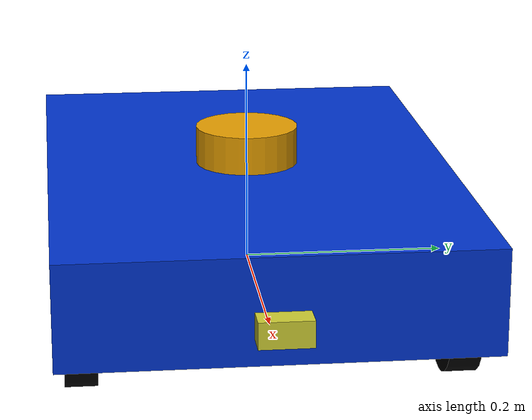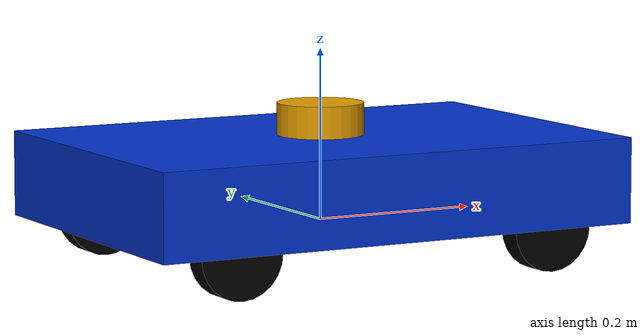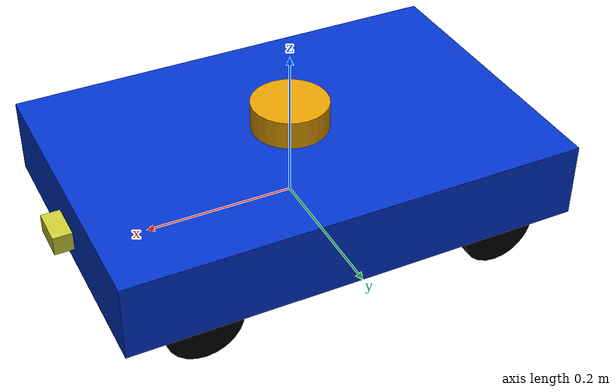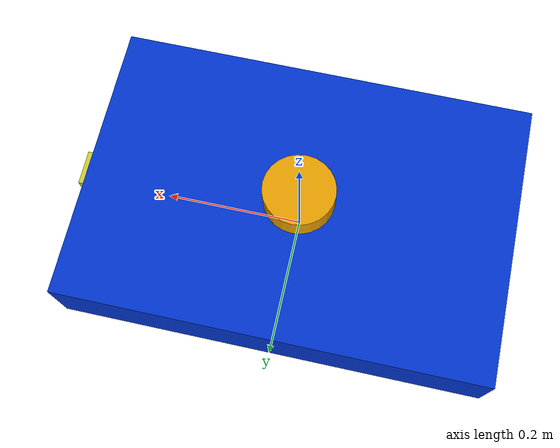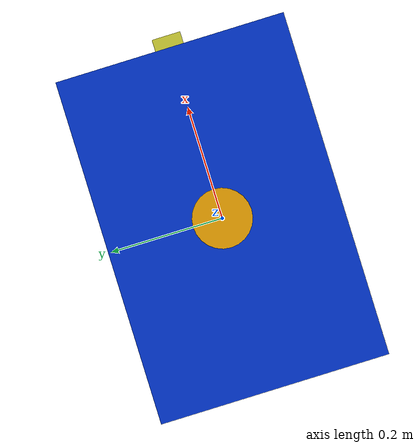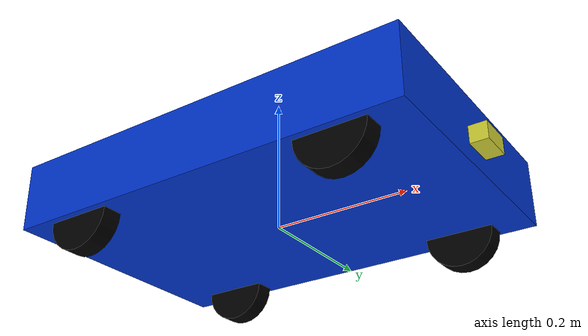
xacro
<?xml version="1.0"?>
<robot xmlns:xacro="http://ros.org/wiki/xacro" name="ackermann_robot">
    <!-- Define Macros/Properties -->
    <xacro:property name="chassis_length" value="0.6"/>
    <xacro:property name="chassis_width" value="0.4"/>
    <xacro:property name="chassis_height" value="0.1"/>

    <!-- Wheel dimensions -->
    <xacro:property name="wheel_radius" value="0.05"/>
    <xacro:property name="wheel_width" value="0.03"/>

    <!-- Ground clearance -->
    <xacro:property name="ground_clearance" value="${wheel_radius}"/>

    <!-- Axle distances -->
    <xacro:property name="wheelbase" value="0.4"/>  <!-- distance between front and rear axles -->
    <xacro:property name="track_width" value="0.3"/>  <!-- distance between left and right wheels -->

    <!-- Steering link dimensions -->
    <xacro:property name="steering_link_size" value="0.02"/>
    <xacro:property name="steering_offset_z" value="0.01"/> <!-- Small offset to prevent collision -->

    <!-- Sensor placements -->
    <xacro:property name="imu_height" value="${chassis_height + 0.075}"/>
    <xacro:property name="lidar_height" value="${chassis_height + 0.05}"/>
    <xacro:property name="camera_height" value="${chassis_height + 0.15}"/>

    <!-- Sensor dimensions -->
    <xacro:property name="imu_size" value="0.05"/>
    <xacro:property name="lidar_radius" value="0.04"/>
    <xacro:property name="lidar_height" value="0.02"/>
    <xacro:property name="camera_size" value="0.05"/>

    <!-- Inertial/Visual/Collision Macros -->
    <!-- Define inertial property macros  -->

    <xacro:macro name="box_inertia" params="m w h d">
        <inertial>
            <origin xyz="0 0 0" rpy="${pi/2} 0 ${pi/2}"/>
            <mass value="${m}"/>
            <inertia ixx="${(m/12) * (h*h + d*d)}" ixy="0.0" ixz="0.0" iyy="${(m/12) * (w*w + d*d)}" iyz="0.0"
                     izz="${(m/12) * (w*w + h*h)}"/>
        </inertial>
    </xacro:macro>

    <xacro:macro name="cylinder_inertia" params="m r h">
        <inertial>
            <origin xyz="0 0 0" rpy="${pi/2} 0 0"/>
            <mass value="${m}"/>
            <inertia ixx="${(m/12) * (3*r*r + h*h)}" ixy="0" ixz="0" iyy="${(m/12) * (3*r*r + h*h)}" iyz="0"
                     izz="${(m/2) * (r*r)}"/>
        </inertial>
    </xacro:macro>

    <xacro:macro name="sphere_inertia" params="m r">
        <inertial>
            <mass value="${m}"/>
            <inertia ixx="${(2/5) * m * (r*r)}" ixy="0.0" ixz="0.0" iyy="${(2/5) * m * (r*r)}" iyz="0.0"
                     izz="${(2/5) * m * (r*r)}"/>
        </inertial>
    </xacro:macro>

    <xacro:macro name="chassis_link" params="prefix">
        <link name="${prefix}_link">
            <visual>
                <geometry>
                    <box size="${chassis_length} ${chassis_width} ${chassis_height}"/>
                </geometry>
                <material name="Blue">
                    <color rgba="0 0.2 0.8 1.0"/>
                </material>
                <!-- The visual origin is at the center of the chassis box -->
                <origin xyz="0 0 0" rpy="0 0 0"/>
            </visual>
            <collision>
                <geometry>
                    <box size="${chassis_length} ${chassis_width} ${chassis_height}"/>
                </geometry>
                <origin xyz="0 0 0" rpy="0 0 0"/>
            </collision>
            <inertial>
                <origin xyz="0 0 0" rpy="0 0 0"/>
                <mass value="5.0"/>
                <inertia ixx="0.1" ixy="0.0" ixz="0.0" iyy="0.1" iyz="0.0" izz="0.1"/>
            </inertial>
        </link>
    </xacro:macro>

    <xacro:macro name="wheel_link" params="name suffix pos_x pos_y pos_z">
        <link name="${name}">
            <visual>
                <!-- Rotate cylinder so its axis aligns with joint axis -->
                <origin xyz="0 0 0" rpy="1.5708 0 0"/>
                <geometry>
                    <cylinder length="${wheel_width}" radius="${wheel_radius}"/>
                </geometry>
                <material name="Black">
                    <color rgba="0 0 0 1.0"/>
                </material>
            </visual>
            <collision>
                <origin xyz="0 0 0" rpy="1.5708 0 0"/>
                <geometry>
                    <cylinder length="${wheel_width}" radius="${wheel_radius}"/>
                </geometry>
            </collision>
            <inertial>
                <origin xyz="0 0 0" rpy="1.5708 0 0"/>
                <mass value="0.5"/>
                <inertia ixx="0.001" ixy="0.0" ixz="0.0" iyy="0.001" iyz="0.0" izz="0.0005"/>
            </inertial>
        </link>

        <!-- Joint connecting wheel to chassis or steering link -->
        <joint name="${name}_joint" type="continuous">
            <parent link="${suffix}"/>
            <child link="${name}"/>
            <origin xyz="${pos_x} ${pos_y} ${pos_z}" rpy="0 0 0"/>
            <axis xyz="0 1 0"/>
            <!-- Add dynamics properties for better simulation -->
            <dynamics damping="0.01" friction="0.1"/>
        </joint>
    </xacro:macro>

    <!-- Chassis -->
    <!-- Base footprint is a virtual frame at the ground directly beneath the robot's center -->
    <link name="base_footprint"/>

    <joint name="base_footprint_joint" type="fixed">
        <parent link="base_footprint"/>
        <child link="base_link"/>
        <origin xyz="0 0 ${wheel_radius}" rpy="0 0 0"/>
    </joint>

    <!-- Create the chassis -->
    <xacro:chassis_link prefix="base"/>

    <!-- Steering Links -->

    <link name="front_left_steering_link">
        <visual>
            <geometry>
                <box size="${steering_link_size} ${steering_link_size} ${steering_link_size}"/>
            </geometry>
            <origin xyz="0 0 0" rpy="0 0 0"/>
            <material name="Gray">
                <color rgba="0.5 0.5 0.5 1.0"/>
            </material>
        </visual>
        <collision>
            <geometry>
                <box size="${steering_link_size} ${steering_link_size} ${steering_link_size}"/>
            </geometry>
            <origin xyz="0 0 0" rpy="0 0 0"/>
        </collision>
        <inertial>
            <mass value="0.1"/>
            <inertia ixx="0.0001" ixy="0.0" ixz="0.0" iyy="0.0001" iyz="0.0" izz="0.0001"/>
        </inertial>
    </link>
    <joint name="front_left_steering_joint" type="revolute">
        <parent link="base_link"/>
        <child link="front_left_steering_link"/>
        <!-- Adjust the steering joint position relative to the center of base_link -->
        <origin xyz="${wheelbase/2} ${track_width/2} 0" rpy="0 0 0"/>
        <axis xyz="0 0 1"/>
        <limit lower="-0.785" upper="0.785" effort="5.0" velocity="5.0"/>
    </joint>

    <link name="front_right_steering_link">
        <visual>
            <geometry>
                <box size="${steering_link_size} ${steering_link_size} ${steering_link_size}"/>
            </geometry>
            <origin xyz="0 0 0" rpy="0 0 0"/>
            <material name="Gray">
                <color rgba="0.5 0.5 0.5 1.0"/>
            </material>
        </visual>
        <collision>
            <geometry>
                <box size="${steering_link_size} ${steering_link_size} ${steering_link_size}"/>
            </geometry>
            <origin xyz="0 0 0" rpy="0 0 0"/>
        </collision>
        <inertial>
            <mass value="0.1"/>
            <inertia ixx="0.0001" ixy="0.0" ixz="0.0" iyy="0.0001" iyz="0.0" izz="0.0001"/>
        </inertial>
    </link>
    <joint name="front_right_steering_joint" type="revolute">
        <parent link="base_link"/>
        <child link="front_right_steering_link"/>
        <!-- Adjust the steering joint position relative to the center of base_link -->
        <origin xyz="${wheelbase/2} -${track_width/2} 0" rpy="0 0 0"/>
        <axis xyz="0 0 1"/>
        <limit lower="-0.785" upper="0.785" effort="5.0" velocity="5.0"/>
    </joint>

    <!-- Rear Wheels (driven) -->
    <xacro:wheel_link
            name="rear_left_wheel"
            suffix="base_link"
            pos_x="${-wheelbase/2}"
            pos_y="${track_width/2 + wheel_width/2 + 0.01}"
            pos_z="${-chassis_height/2}"
    />
    <xacro:wheel_link
            name="rear_right_wheel"
            suffix="base_link"
            pos_x="${-wheelbase/2}"
            pos_y="${-track_width/2 - wheel_width/2 - 0.01}"
            pos_z="${-chassis_height/2}"
    />

    <!-- Front Wheels (mounted) -->
    <xacro:wheel_link
            name="front_left_wheel"
            suffix="front_left_steering_link"
            pos_x="0"
            pos_y="${wheel_width/2 + 0.01}"
            pos_z="${-chassis_height/2}"
    />
    <xacro:wheel_link
            name="front_right_wheel"
            suffix="front_right_steering_link"
            pos_x="0"
            pos_y="${-wheel_width/2 - 0.01}"
            pos_z="${-chassis_height/2}"
    />

    <!-- ros2_control Transmissions -->
    <ros2_control name="Ackermann" type="system">
        <hardware>
            <plugin>gazebo_ros2_control/GazeboSystem</plugin>
        </hardware>

        <joint name="rear_left_wheel_joint">
            <command_interface name="velocity">
                <param name="min">-10</param>
                <param name="max">10</param>
            </command_interface>
            <state_interface name="velocity"/>
            <state_interface name="position"/>
        </joint>
        <joint name="rear_right_wheel_joint">
            <command_interface name="velocity">
                <param name="min">-10</param>
                <param name="max">10</param>
            </command_interface>
            <state_interface name="velocity"/>
            <state_interface name="position"/>
        </joint>
        <joint name="front_left_steering_joint">
            <command_interface name="position">
                <param name="min">-0.785</param>
                <param name="max">0.785</param>
            </command_interface>
            <state_interface name="position"/>
            <state_interface name="velocity"/>
        </joint>
        <joint name="front_right_steering_joint">
            <command_interface name="position">
                <param name="min">-0.785</param>
                <param name="max">0.785</param>
            </command_interface>
            <state_interface name="position"/>
            <state_interface name="velocity"/>
        </joint>
    </ros2_control>

    <gazebo>
        <plugin name="gazebo_ros2_control" filename="libgazebo_ros2_control.so">
            <parameters>$(find ackermann_robot_description)/config/ros2_control.yaml</parameters>
            <robot_param>robot_description</robot_param>
            <robot_param_node>robot_state_publisher</robot_param_node>
        </plugin>
    </gazebo>

    <!-- Sensors -->

    <!-- LiDAR Sensor -->
    <link name="lidar_link">
        <inertial>
            <origin xyz="0 0 0" rpy="0 0 0"/>
            <mass value="0.125"/>
            <inertia ixx="0.001" ixy="0" ixz="0" iyy="0.001" iyz="0" izz="0.001"/>
        </inertial>

        <collision>
            <origin xyz="0 0 0" rpy="0 0 0"/>
            <geometry>
                <cylinder radius="0.0508" length="0.055"/>
            </geometry>
        </collision>

        <visual>
            <origin xyz="0 0 0" rpy="0 0 0"/>
            <geometry>
                <cylinder radius="0.0508" length="0.055"/>
            </geometry>
        </visual>
    </link>

    <joint name="lidar_joint" type="fixed">
        <parent link="base_link"/>
        <child link="lidar_link"/>
        <!-- Adjust the position relative to the center of base_link -->
        <origin xyz="0 0 ${chassis_height/2 + lidar_height/2}" rpy="0 0 0"/>
    </joint>

    <gazebo reference="lidar_link">
        <sensor name="lidar" type="ray">
            <pose>0 0 0 0 0 0</pose>
            <update_rate>10</update_rate>
            <ray>
                <scan>
                    <horizontal>
                        <samples>360</samples>
                        <resolution>1.000000</resolution>
                        <min_angle>-0.000000</min_angle>
                        <max_angle>6.280000</max_angle>
                    </horizontal>
                </scan>
                <range>
                    <min>0.1</min>
                    <max>3.5</max>
                    <resolution>0.015000</resolution>
                </range>
                <noise>
                    <type>gaussian</type>
                    <mean>0.0</mean>
                    <stddev>0.01</stddev>
                </noise>
            </ray>
            <plugin name="gazebo_ros_laser" filename="libgazebo_ros_ray_sensor.so">
                <ros>
                    <remapping>~/out:=scan</remapping>
                </ros>
                <output_type>sensor_msgs/LaserScan</output_type>
                <frame_name>lidar_link</frame_name>
            </plugin>
        </sensor>
    </gazebo>

    <!-- Depth Camera Sensor -->
    <link name="depth_camera_link">
        <inertial>
            <origin xyz="0 0 0" rpy="0 0 0"/>
            <mass value="0.1"/>
            <inertia ixx="0.0001" ixy="0" ixz="0" iyy="0.0001" iyz="0" izz="0.0001"/>
        </inertial>

        <collision>
            <origin xyz="0 0 0" rpy="0 0 0"/>
            <geometry>
                <box size="${camera_size} ${camera_size} ${camera_size/2}"/>
            </geometry>
        </collision>

        <visual>
            <origin xyz="0 0 0" rpy="0 0 0"/>
            <geometry>
                <box size="${camera_size} ${camera_size} ${camera_size/2}"/>
            </geometry>
            <material name="Yellow">
                <color rgba="0.8 0.8 0.2 1.0"/>
            </material>
        </visual>
    </link>

    <joint name="depth_camera_joint" type="fixed">
        <parent link="base_link"/>
        <child link="depth_camera_link"/>
        <!-- Position the depth camera at the front of the robot with a height offset -->
        <origin xyz="${chassis_length/2} 0 ${chassis_height/2 - camera_height/4}" rpy="0 0 0"/>
    </joint>

    <gazebo reference="depth_camera_link">
        <sensor name="depth_camera" type="depth">
            <update_rate>30.0</update_rate>
            <camera>
                <horizontal_fov>1.047198</horizontal_fov>
                <image>
                    <width>640</width>
                    <height>480</height>
                    <format>R8G8B8</format>
                </image>
                <clip>
                    <near>0.05</near>
                    <far>3</far>
                </clip>
            </camera>
            <plugin name="gazebo_ros_depth_camera" filename="libgazebo_ros_camera.so">
                <baseline>0.2</baseline>
                <alwaysOn>true</alwaysOn>
                <updateRate>0.0</updateRate>
                <frame_name>camera_depth_frame</frame_name>
                <pointCloudCutoff>0.5</pointCloudCutoff>
                <pointCloudCutoffMax>3.0</pointCloudCutoffMax>
                <distortionK1>0</distortionK1>
                <distortionK2>0</distortionK2>
                <distortionK3>0</distortionK3>
                <distortionT1>0</distortionT1>
                <distortionT2>0</distortionT2>
                <CxPrime>0</CxPrime>
                <Cx>0</Cx>
                <Cy>0</Cy>
                <focalLength>0</focalLength>
                <hackBaseline>0</hackBaseline>
            </plugin>
        </sensor>
    </gazebo>

    <!-- IMU sensor as dedicated link -->
    <link name="imu_link">
        <inertial>
            <origin xyz="0 0 0" rpy="0 0 0"/>
            <mass value="0.01"/>
            <inertia ixx="0.0001" ixy="0.0" ixz="0.0" iyy="0.0001" iyz="0.0" izz="0.0001"/>
        </inertial>
        <visual>
            <origin xyz="0 0 0" rpy="0 0 0"/>
            <geometry>
                <box size="${imu_size} ${imu_size} ${imu_size/2}"/>
            </geometry>
            <material name="Red">
                <color rgba="0.8 0.2 0.2 1.0"/>
            </material>
        </visual>
        <collision>
            <origin xyz="0 0 0" rpy="0 0 0"/>
            <geometry>
                <box size="${imu_size} ${imu_size} ${imu_size/2}"/>
            </geometry>
        </collision>
    </link>

    <joint name="imu_joint" type="fixed">
        <parent link="base_link"/>
        <child link="imu_link"/>
        <!-- Mount IMU at the center of the robot for best results -->
        <origin xyz="0 0 ${chassis_height/2 + imu_size/4}" rpy="0 0 0"/>
    </joint>

    <!-- IMU sensor plugin -->
    <gazebo reference="imu_link">
        <sensor name="imu_sensor" type="imu">
            <update_rate>100.0</update_rate>
            <imu>
                <angular_velocity>
                    <x>
                        <noise type="gaussian">
                            <mean>0.0</mean>
                            <stddev>2e-4</stddev>
                            <bias_mean>0.0000075</bias_mean>
                            <bias_stddev>0.0000008</bias_stddev>
                        </noise>
                    </x>
                    <y>
                        <noise type="gaussian">
                            <mean>0.0</mean>
                            <stddev>2e-4</stddev>
                            <bias_mean>0.0000075</bias_mean>
                            <bias_stddev>0.0000008</bias_stddev>
                        </noise>
                    </y>
                    <z>
                        <noise type="gaussian">
                            <mean>0.0</mean>
                            <stddev>2e-4</stddev>
                            <bias_mean>0.0000075</bias_mean>
                            <bias_stddev>0.0000008</bias_stddev>
                        </noise>
                    </z>
                </angular_velocity>
                <linear_acceleration>
                    <x>
                        <noise type="gaussian">
                            <mean>0.0</mean>
                            <stddev>1.7e-2</stddev>
                            <bias_mean>0.1</bias_mean>
                            <bias_stddev>0.001</bias_stddev>
                        </noise>
                    </x>
                    <y>
                        <noise type="gaussian">
                            <mean>0.0</mean>
                            <stddev>1.7e-2</stddev>
                            <bias_mean>0.1</bias_mean>
                            <bias_stddev>0.001</bias_stddev>
                        </noise>
                    </y>
                    <z>
                        <noise type="gaussian">
                            <mean>0.0</mean>
                            <stddev>1.7e-2</stddev>
                            <bias_mean>0.1</bias_mean>
                            <bias_stddev>0.001</bias_stddev>
                        </noise>
                    </z>
                </linear_acceleration>
            </imu>
            <plugin name="gazebo_ros_imu_sensor" filename="libgazebo_ros_imu_sensor.so">
                <ros>
                    <remapping>~/out:=imu/data</remapping>
                </ros>
                <frame_name>imu_link</frame_name>
                <initial_orientation_as_reference>false</initial_orientation_as_reference>
            </plugin>
        </sensor>
    </gazebo>

</robot>
